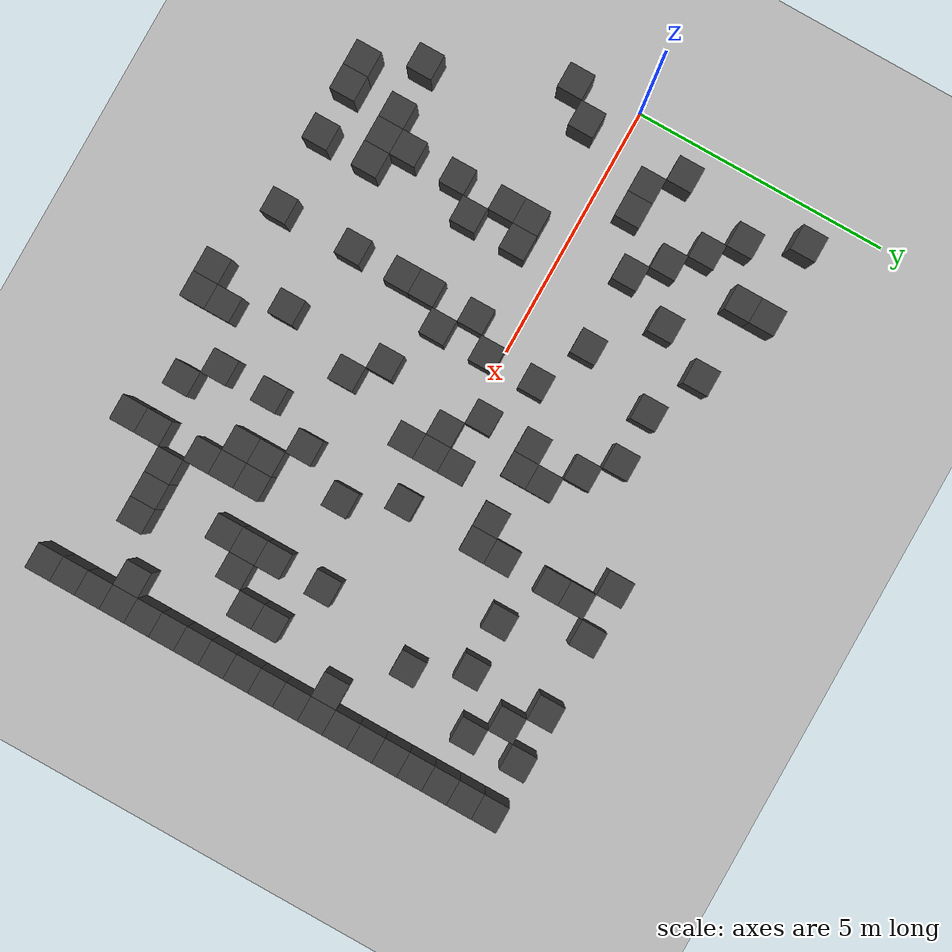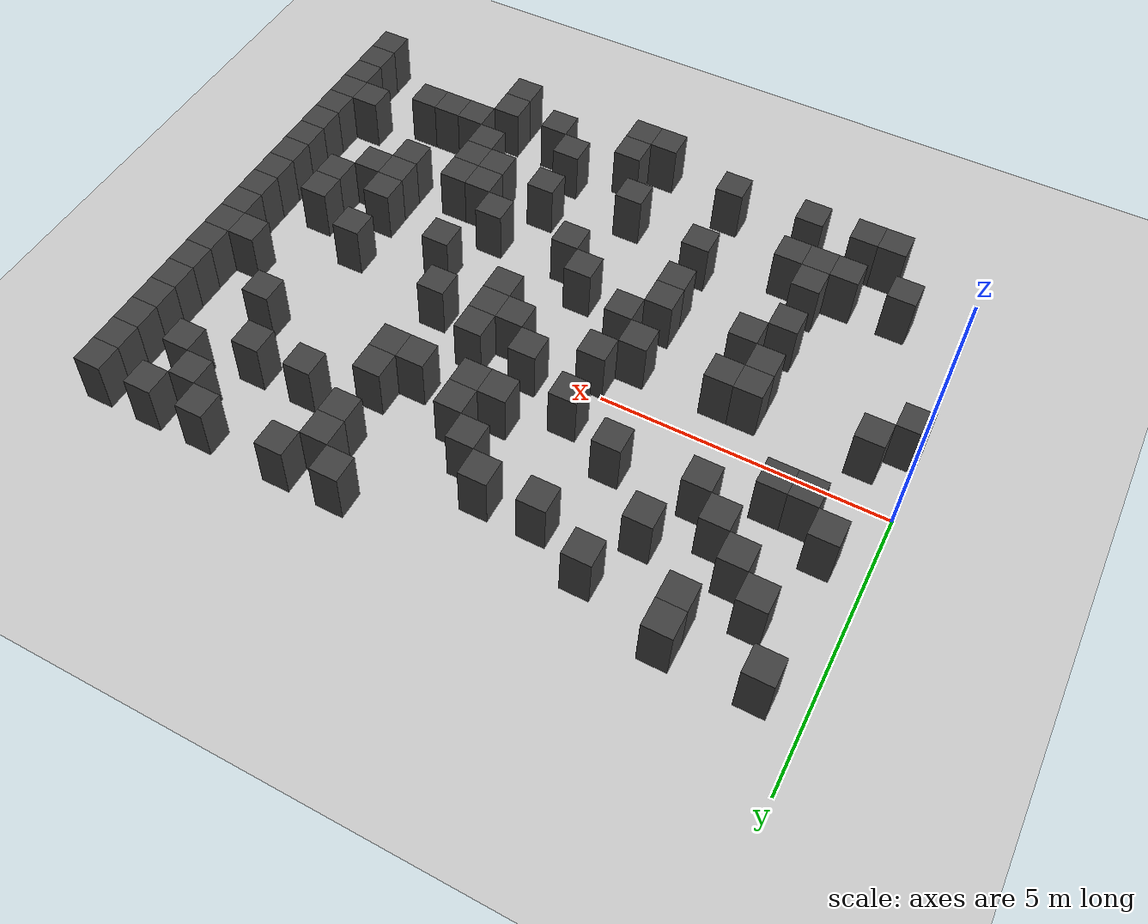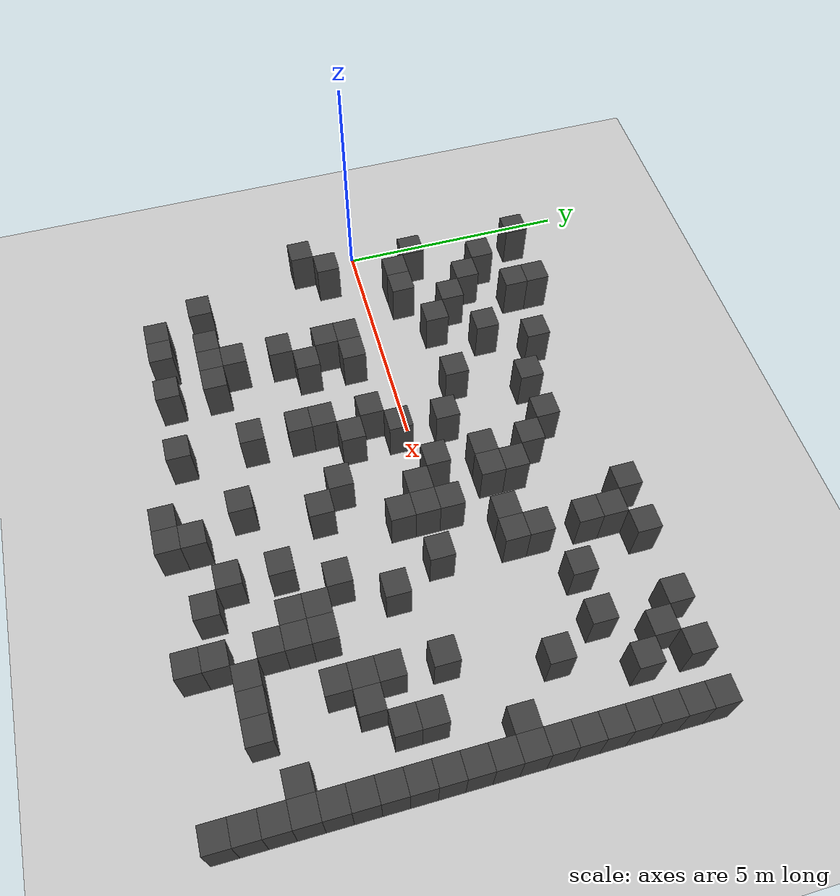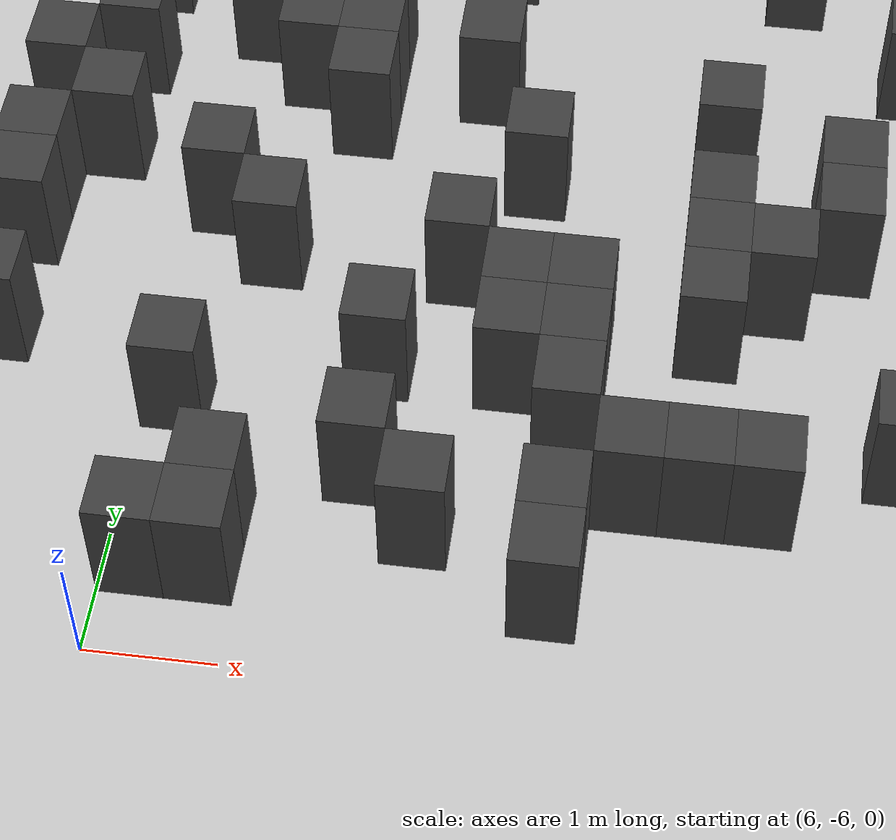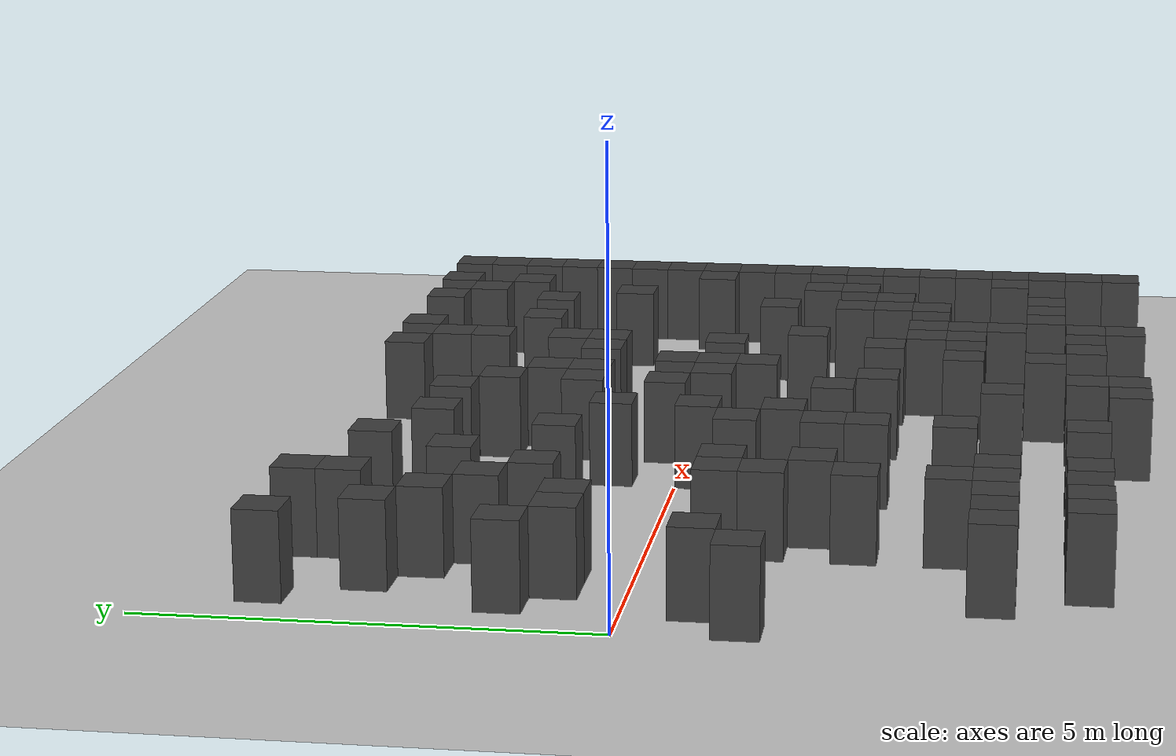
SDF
<sdf version="1.7">
 <world name="map_4225">
  <model name="ground_plane">
   <static>true</static>
   <link name="link">
    <collision name="collision">
     <geometry><plane><normal>0 0 1</normal><size>200 200</size></plane></geometry>
    </collision>
    <visual name="visual">
     <geometry><plane><normal>0 0 1</normal><size>200 200</size></plane></geometry>
     <material><ambient>0.8 0.8 0.8 1</ambient><diffuse>0.8 0.8 0.8 1</diffuse></material>
    </visual>
   </link>
  </model>
  <model name="maze_environment">
   <static>true</static>
   <link name="wall_244">
    <pose>0.750 3.750 0.500 0 0 0</pose>
    <collision name="col"><geometry><box><size>0.5 0.5 1.0</size></box></geometry></collision>
    <visual name="vis">
     <geometry><box><size>0.5 0.5 1.0</size></box></geometry>
     <material><ambient>0.15 0.15 0.15 1</ambient><diffuse>0.25 0.25 0.25 1</diffuse></material>
    </visual>
   </link>
   <link name="wall_245">
    <pose>2.250 3.750 0.500 0 0 0</pose>
    <collision name="col"><geometry><box><size>0.5 0.5 1.0</size></box></geometry></collision>
    <visual name="vis">
     <geometry><box><size>0.5 0.5 1.0</size></box></geometry>
     <material><ambient>0.15 0.15 0.15 1</ambient><diffuse>0.25 0.25 0.25 1</diffuse></material>
    </visual>
   </link>
   <link name="wall_246">
    <pose>7.750 3.750 0.500 0 0 0</pose>
    <collision name="col"><geometry><box><size>0.5 0.5 1.0</size></box></geometry></collision>
    <visual name="vis">
     <geometry><box><size>0.5 0.5 1.0</size></box></geometry>
     <material><ambient>0.15 0.15 0.15 1</ambient><diffuse>0.25 0.25 0.25 1</diffuse></material>
    </visual>
   </link>
   <link name="wall_247">
    <pose>8.750 3.750 0.500 0 0 0</pose>
    <collision name="col"><geometry><box><size>0.5 0.5 1.0</size></box></geometry></collision>
    <visual name="vis">
     <geometry><box><size>0.5 0.5 1.0</size></box></geometry>
     <material><ambient>0.15 0.15 0.15 1</ambient><diffuse>0.25 0.25 0.25 1</diffuse></material>
    </visual>
   </link>
   <link name="wall_248">
    <pose>10.250 3.750 0.500 0 0 0</pose>
    <collision name="col"><geometry><box><size>0.5 0.5 1.0</size></box></geometry></collision>
    <visual name="vis">
     <geometry><box><size>0.5 0.5 1.0</size></box></geometry>
     <material><ambient>0.15 0.15 0.15 1</ambient><diffuse>0.25 0.25 0.25 1</diffuse></material>
    </visual>
   </link>
   <link name="wall_249">
    <pose>11.250 3.750 0.500 0 0 0</pose>
    <collision name="col"><geometry><box><size>0.5 0.5 1.0</size></box></geometry></collision>
    <visual name="vis">
     <geometry><box><size>0.5 0.5 1.0</size></box></geometry>
     <material><ambient>0.15 0.15 0.15 1</ambient><diffuse>0.25 0.25 0.25 1</diffuse></material>
    </visual>
   </link>
   <link name="wall_250">
    <pose>12.250 3.750 0.500 0 0 0</pose>
    <collision name="col"><geometry><box><size>0.5 0.5 1.0</size></box></geometry></collision>
    <visual name="vis">
     <geometry><box><size>0.5 0.5 1.0</size></box></geometry>
     <material><ambient>0.15 0.15 0.15 1</ambient><diffuse>0.25 0.25 0.25 1</diffuse></material>
    </visual>
   </link>
   <link name="wall_256">
    <pose>2.250 3.250 0.500 0 0 0</pose>
    <collision name="col"><geometry><box><size>0.5 0.5 1.0</size></box></geometry></collision>
    <visual name="vis">
     <geometry><box><size>0.5 0.5 1.0</size></box></geometry>
     <material><ambient>0.15 0.15 0.15 1</ambient><diffuse>0.25 0.25 0.25 1</diffuse></material>
    </visual>
   </link>
   <link name="wall_257">
    <pose>3.750 3.250 0.500 0 0 0</pose>
    <collision name="col"><geometry><box><size>0.5 0.5 1.0</size></box></geometry></collision>
    <visual name="vis">
     <geometry><box><size>0.5 0.5 1.0</size></box></geometry>
     <material><ambient>0.15 0.15 0.15 1</ambient><diffuse>0.25 0.25 0.25 1</diffuse></material>
    </visual>
   </link>
   <link name="wall_258">
    <pose>8.250 3.250 0.500 0 0 0</pose>
    <collision name="col"><geometry><box><size>0.5 0.5 1.0</size></box></geometry></collision>
    <visual name="vis">
     <geometry><box><size>0.5 0.5 1.0</size></box></geometry>
     <material><ambient>0.15 0.15 0.15 1</ambient><diffuse>0.25 0.25 0.25 1</diffuse></material>
    </visual>
   </link>
   <link name="wall_259">
    <pose>10.750 3.250 0.500 0 0 0</pose>
    <collision name="col"><geometry><box><size>0.5 0.5 1.0</size></box></geometry></collision>
    <visual name="vis">
     <geometry><box><size>0.5 0.5 1.0</size></box></geometry>
     <material><ambient>0.15 0.15 0.15 1</ambient><diffuse>0.25 0.25 0.25 1</diffuse></material>
    </visual>
   </link>
   <link name="wall_260">
    <pose>12.250 3.250 0.500 0 0 0</pose>
    <collision name="col"><geometry><box><size>0.5 0.5 1.0</size></box></geometry></collision>
    <visual name="vis">
     <geometry><box><size>0.5 0.5 1.0</size></box></geometry>
     <material><ambient>0.15 0.15 0.15 1</ambient><diffuse>0.25 0.25 0.25 1</diffuse></material>
    </visual>
   </link>
   <link name="wall_267">
    <pose>1.250 2.750 0.500 0 0 0</pose>
    <collision name="col"><geometry><box><size>0.5 0.5 1.0</size></box></geometry></collision>
    <visual name="vis">
     <geometry><box><size>0.5 0.5 1.0</size></box></geometry>
     <material><ambient>0.15 0.15 0.15 1</ambient><diffuse>0.25 0.25 0.25 1</diffuse></material>
    </visual>
   </link>
   <link name="wall_268">
    <pose>4.750 2.750 0.500 0 0 0</pose>
    <collision name="col"><geometry><box><size>0.5 0.5 1.0</size></box></geometry></collision>
    <visual name="vis">
     <geometry><box><size>0.5 0.5 1.0</size></box></geometry>
     <material><ambient>0.15 0.15 0.15 1</ambient><diffuse>0.25 0.25 0.25 1</diffuse></material>
    </visual>
   </link>
   <link name="wall_269">
    <pose>5.750 2.750 0.500 0 0 0</pose>
    <collision name="col"><geometry><box><size>0.5 0.5 1.0</size></box></geometry></collision>
    <visual name="vis">
     <geometry><box><size>0.5 0.5 1.0</size></box></geometry>
     <material><ambient>0.15 0.15 0.15 1</ambient><diffuse>0.25 0.25 0.25 1</diffuse></material>
    </visual>
   </link>
   <link name="wall_270">
    <pose>8.250 2.750 0.500 0 0 0</pose>
    <collision name="col"><geometry><box><size>0.5 0.5 1.0</size></box></geometry></collision>
    <visual name="vis">
     <geometry><box><size>0.5 0.5 1.0</size></box></geometry>
     <material><ambient>0.15 0.15 0.15 1</ambient><diffuse>0.25 0.25 0.25 1</diffuse></material>
    </visual>
   </link>
   <link name="wall_271">
    <pose>11.250 2.750 0.500 0 0 0</pose>
    <collision name="col"><geometry><box><size>0.5 0.5 1.0</size></box></geometry></collision>
    <visual name="vis">
     <geometry><box><size>0.5 0.5 1.0</size></box></geometry>
     <material><ambient>0.15 0.15 0.15 1</ambient><diffuse>0.25 0.25 0.25 1</diffuse></material>
    </visual>
   </link>
   <link name="wall_272">
    <pose>12.250 2.750 0.500 0 0 0</pose>
    <collision name="col"><geometry><box><size>0.5 0.5 1.0</size></box></geometry></collision>
    <visual name="vis">
     <geometry><box><size>0.5 0.5 1.0</size></box></geometry>
     <material><ambient>0.15 0.15 0.15 1</ambient><diffuse>0.25 0.25 0.25 1</diffuse></material>
    </visual>
   </link>
   <link name="wall_280">
    <pose>1.750 2.250 0.500 0 0 0</pose>
    <collision name="col"><geometry><box><size>0.5 0.5 1.0</size></box></geometry></collision>
    <visual name="vis">
     <geometry><box><size>0.5 0.5 1.0</size></box></geometry>
     <material><ambient>0.15 0.15 0.15 1</ambient><diffuse>0.25 0.25 0.25 1</diffuse></material>
    </visual>
   </link>
   <link name="wall_281">
    <pose>3.250 2.250 0.500 0 0 0</pose>
    <collision name="col"><geometry><box><size>0.5 0.5 1.0</size></box></geometry></collision>
    <visual name="vis">
     <geometry><box><size>0.5 0.5 1.0</size></box></geometry>
     <material><ambient>0.15 0.15 0.15 1</ambient><diffuse>0.25 0.25 0.25 1</diffuse></material>
    </visual>
   </link>
   <link name="wall_282">
    <pose>6.250 2.250 0.500 0 0 0</pose>
    <collision name="col"><geometry><box><size>0.5 0.5 1.0</size></box></geometry></collision>
    <visual name="vis">
     <geometry><box><size>0.5 0.5 1.0</size></box></geometry>
     <material><ambient>0.15 0.15 0.15 1</ambient><diffuse>0.25 0.25 0.25 1</diffuse></material>
    </visual>
   </link>
   <link name="wall_283">
    <pose>9.250 2.250 0.500 0 0 0</pose>
    <collision name="col"><geometry><box><size>0.5 0.5 1.0</size></box></geometry></collision>
    <visual name="vis">
     <geometry><box><size>0.5 0.5 1.0</size></box></geometry>
     <material><ambient>0.15 0.15 0.15 1</ambient><diffuse>0.25 0.25 0.25 1</diffuse></material>
    </visual>
   </link>
   <link name="wall_284">
    <pose>10.250 2.250 0.500 0 0 0</pose>
    <collision name="col"><geometry><box><size>0.5 0.5 1.0</size></box></geometry></collision>
    <visual name="vis">
     <geometry><box><size>0.5 0.5 1.0</size></box></geometry>
     <material><ambient>0.15 0.15 0.15 1</ambient><diffuse>0.25 0.25 0.25 1</diffuse></material>
    </visual>
   </link>
   <link name="wall_285">
    <pose>12.250 2.250 0.500 0 0 0</pose>
    <collision name="col"><geometry><box><size>0.5 0.5 1.0</size></box></geometry></collision>
    <visual name="vis">
     <geometry><box><size>0.5 0.5 1.0</size></box></geometry>
     <material><ambient>0.15 0.15 0.15 1</ambient><diffuse>0.25 0.25 0.25 1</diffuse></material>
    </visual>
   </link>
   <link name="wall_297">
    <pose>2.250 1.750 0.500 0 0 0</pose>
    <collision name="col"><geometry><box><size>0.5 0.5 1.0</size></box></geometry></collision>
    <visual name="vis">
     <geometry><box><size>0.5 0.5 1.0</size></box></geometry>
     <material><ambient>0.15 0.15 0.15 1</ambient><diffuse>0.25 0.25 0.25 1</diffuse></material>
    </visual>
   </link>
   <link name="wall_298">
    <pose>6.750 1.750 0.500 0 0 0</pose>
    <collision name="col"><geometry><box><size>0.5 0.5 1.0</size></box></geometry></collision>
    <visual name="vis">
     <geometry><box><size>0.5 0.5 1.0</size></box></geometry>
     <material><ambient>0.15 0.15 0.15 1</ambient><diffuse>0.25 0.25 0.25 1</diffuse></material>
    </visual>
   </link>
   <link name="wall_299">
    <pose>8.250 1.750 0.500 0 0 0</pose>
    <collision name="col"><geometry><box><size>0.5 0.5 1.0</size></box></geometry></collision>
    <visual name="vis">
     <geometry><box><size>0.5 0.5 1.0</size></box></geometry>
     <material><ambient>0.15 0.15 0.15 1</ambient><diffuse>0.25 0.25 0.25 1</diffuse></material>
    </visual>
   </link>
   <link name="wall_300">
    <pose>12.250 1.750 0.500 0 0 0</pose>
    <collision name="col"><geometry><box><size>0.5 0.5 1.0</size></box></geometry></collision>
    <visual name="vis">
     <geometry><box><size>0.5 0.5 1.0</size></box></geometry>
     <material><ambient>0.15 0.15 0.15 1</ambient><diffuse>0.25 0.25 0.25 1</diffuse></material>
    </visual>
   </link>
   <link name="wall_305">
    <pose>0.750 1.250 0.500 0 0 0</pose>
    <collision name="col"><geometry><box><size>0.5 0.5 1.0</size></box></geometry></collision>
    <visual name="vis">
     <geometry><box><size>0.5 0.5 1.0</size></box></geometry>
     <material><ambient>0.15 0.15 0.15 1</ambient><diffuse>0.25 0.25 0.25 1</diffuse></material>
    </visual>
   </link>
   <link name="wall_306">
    <pose>2.750 1.250 0.500 0 0 0</pose>
    <collision name="col"><geometry><box><size>0.5 0.5 1.0</size></box></geometry></collision>
    <visual name="vis">
     <geometry><box><size>0.5 0.5 1.0</size></box></geometry>
     <material><ambient>0.15 0.15 0.15 1</ambient><diffuse>0.25 0.25 0.25 1</diffuse></material>
    </visual>
   </link>
   <link name="wall_307">
    <pose>4.250 1.250 0.500 0 0 0</pose>
    <collision name="col"><geometry><box><size>0.5 0.5 1.0</size></box></geometry></collision>
    <visual name="vis">
     <geometry><box><size>0.5 0.5 1.0</size></box></geometry>
     <material><ambient>0.15 0.15 0.15 1</ambient><diffuse>0.25 0.25 0.25 1</diffuse></material>
    </visual>
   </link>
   <link name="wall_308">
    <pose>6.250 1.250 0.500 0 0 0</pose>
    <collision name="col"><geometry><box><size>0.5 0.5 1.0</size></box></geometry></collision>
    <visual name="vis">
     <geometry><box><size>0.5 0.5 1.0</size></box></geometry>
     <material><ambient>0.15 0.15 0.15 1</ambient><diffuse>0.25 0.25 0.25 1</diffuse></material>
    </visual>
   </link>
   <link name="wall_309">
    <pose>6.750 1.250 0.500 0 0 0</pose>
    <collision name="col"><geometry><box><size>0.5 0.5 1.0</size></box></geometry></collision>
    <visual name="vis">
     <geometry><box><size>0.5 0.5 1.0</size></box></geometry>
     <material><ambient>0.15 0.15 0.15 1</ambient><diffuse>0.25 0.25 0.25 1</diffuse></material>
    </visual>
   </link>
   <link name="wall_310">
    <pose>7.750 1.250 0.500 0 0 0</pose>
    <collision name="col"><geometry><box><size>0.5 0.5 1.0</size></box></geometry></collision>
    <visual name="vis">
     <geometry><box><size>0.5 0.5 1.0</size></box></geometry>
     <material><ambient>0.15 0.15 0.15 1</ambient><diffuse>0.25 0.25 0.25 1</diffuse></material>
    </visual>
   </link>
   <link name="wall_311">
    <pose>8.250 1.250 0.500 0 0 0</pose>
    <collision name="col"><geometry><box><size>0.5 0.5 1.0</size></box></geometry></collision>
    <visual name="vis">
     <geometry><box><size>0.5 0.5 1.0</size></box></geometry>
     <material><ambient>0.15 0.15 0.15 1</ambient><diffuse>0.25 0.25 0.25 1</diffuse></material>
    </visual>
   </link>
   <link name="wall_312">
    <pose>10.750 1.250 0.500 0 0 0</pose>
    <collision name="col"><geometry><box><size>0.5 0.5 1.0</size></box></geometry></collision>
    <visual name="vis">
     <geometry><box><size>0.5 0.5 1.0</size></box></geometry>
     <material><ambient>0.15 0.15 0.15 1</ambient><diffuse>0.25 0.25 0.25 1</diffuse></material>
    </visual>
   </link>
   <link name="wall_313">
    <pose>12.250 1.250 0.500 0 0 0</pose>
    <collision name="col"><geometry><box><size>0.5 0.5 1.0</size></box></geometry></collision>
    <visual name="vis">
     <geometry><box><size>0.5 0.5 1.0</size></box></geometry>
     <material><ambient>0.15 0.15 0.15 1</ambient><diffuse>0.25 0.25 0.25 1</diffuse></material>
    </visual>
   </link>
   <link name="wall_320">
    <pose>1.250 0.750 0.500 0 0 0</pose>
    <collision name="col"><geometry><box><size>0.5 0.5 1.0</size></box></geometry></collision>
    <visual name="vis">
     <geometry><box><size>0.5 0.5 1.0</size></box></geometry>
     <material><ambient>0.15 0.15 0.15 1</ambient><diffuse>0.25 0.25 0.25 1</diffuse></material>
    </visual>
   </link>
   <link name="wall_321">
    <pose>1.750 0.750 0.500 0 0 0</pose>
    <collision name="col"><geometry><box><size>0.5 0.5 1.0</size></box></geometry></collision>
    <visual name="vis">
     <geometry><box><size>0.5 0.5 1.0</size></box></geometry>
     <material><ambient>0.15 0.15 0.15 1</ambient><diffuse>0.25 0.25 0.25 1</diffuse></material>
    </visual>
   </link>
   <link name="wall_322">
    <pose>5.250 0.750 0.500 0 0 0</pose>
    <collision name="col"><geometry><box><size>0.5 0.5 1.0</size></box></geometry></collision>
    <visual name="vis">
     <geometry><box><size>0.5 0.5 1.0</size></box></geometry>
     <material><ambient>0.15 0.15 0.15 1</ambient><diffuse>0.25 0.25 0.25 1</diffuse></material>
    </visual>
   </link>
   <link name="wall_323">
    <pose>12.250 0.750 0.500 0 0 0</pose>
    <collision name="col"><geometry><box><size>0.5 0.5 1.0</size></box></geometry></collision>
    <visual name="vis">
     <geometry><box><size>0.5 0.5 1.0</size></box></geometry>
     <material><ambient>0.15 0.15 0.15 1</ambient><diffuse>0.25 0.25 0.25 1</diffuse></material>
    </visual>
   </link>
   <link name="wall_329">
    <pose>6.250 0.250 0.500 0 0 0</pose>
    <collision name="col"><geometry><box><size>0.5 0.5 1.0</size></box></geometry></collision>
    <visual name="vis">
     <geometry><box><size>0.5 0.5 1.0</size></box></geometry>
     <material><ambient>0.15 0.15 0.15 1</ambient><diffuse>0.25 0.25 0.25 1</diffuse></material>
    </visual>
   </link>
   <link name="wall_330">
    <pose>7.250 0.250 0.500 0 0 0</pose>
    <collision name="col"><geometry><box><size>0.5 0.5 1.0</size></box></geometry></collision>
    <visual name="vis">
     <geometry><box><size>0.5 0.5 1.0</size></box></geometry>
     <material><ambient>0.15 0.15 0.15 1</ambient><diffuse>0.25 0.25 0.25 1</diffuse></material>
    </visual>
   </link>
   <link name="wall_331">
    <pose>11.750 0.250 0.500 0 0 0</pose>
    <collision name="col"><geometry><box><size>0.5 0.5 1.0</size></box></geometry></collision>
    <visual name="vis">
     <geometry><box><size>0.5 0.5 1.0</size></box></geometry>
     <material><ambient>0.15 0.15 0.15 1</ambient><diffuse>0.25 0.25 0.25 1</diffuse></material>
    </visual>
   </link>
   <link name="wall_332">
    <pose>12.250 0.250 0.500 0 0 0</pose>
    <collision name="col"><geometry><box><size>0.5 0.5 1.0</size></box></geometry></collision>
    <visual name="vis">
     <geometry><box><size>0.5 0.5 1.0</size></box></geometry>
     <material><ambient>0.15 0.15 0.15 1</ambient><diffuse>0.25 0.25 0.25 1</diffuse></material>
    </visual>
   </link>
   <link name="wall_342">
    <pose>5.250 -0.250 0.500 0 0 0</pose>
    <collision name="col"><geometry><box><size>0.5 0.5 1.0</size></box></geometry></collision>
    <visual name="vis">
     <geometry><box><size>0.5 0.5 1.0</size></box></geometry>
     <material><ambient>0.15 0.15 0.15 1</ambient><diffuse>0.25 0.25 0.25 1</diffuse></material>
    </visual>
   </link>
   <link name="wall_343">
    <pose>6.750 -0.250 0.500 0 0 0</pose>
    <collision name="col"><geometry><box><size>0.5 0.5 1.0</size></box></geometry></collision>
    <visual name="vis">
     <geometry><box><size>0.5 0.5 1.0</size></box></geometry>
     <material><ambient>0.15 0.15 0.15 1</ambient><diffuse>0.25 0.25 0.25 1</diffuse></material>
    </visual>
   </link>
   <link name="wall_344">
    <pose>7.250 -0.250 0.500 0 0 0</pose>
    <collision name="col"><geometry><box><size>0.5 0.5 1.0</size></box></geometry></collision>
    <visual name="vis">
     <geometry><box><size>0.5 0.5 1.0</size></box></geometry>
     <material><ambient>0.15 0.15 0.15 1</ambient><diffuse>0.25 0.25 0.25 1</diffuse></material>
    </visual>
   </link>
   <link name="wall_345">
    <pose>8.250 -0.250 0.500 0 0 0</pose>
    <collision name="col"><geometry><box><size>0.5 0.5 1.0</size></box></geometry></collision>
    <visual name="vis">
     <geometry><box><size>0.5 0.5 1.0</size></box></geometry>
     <material><ambient>0.15 0.15 0.15 1</ambient><diffuse>0.25 0.25 0.25 1</diffuse></material>
    </visual>
   </link>
   <link name="wall_346">
    <pose>12.250 -0.250 0.500 0 0 0</pose>
    <collision name="col"><geometry><box><size>0.5 0.5 1.0</size></box></geometry></collision>
    <visual name="vis">
     <geometry><box><size>0.5 0.5 1.0</size></box></geometry>
     <material><ambient>0.15 0.15 0.15 1</ambient><diffuse>0.25 0.25 0.25 1</diffuse></material>
    </visual>
   </link>
   <link name="wall_353">
    <pose>0.750 -0.750 0.500 0 0 0</pose>
    <collision name="col"><geometry><box><size>0.5 0.5 1.0</size></box></geometry></collision>
    <visual name="vis">
     <geometry><box><size>0.5 0.5 1.0</size></box></geometry>
     <material><ambient>0.15 0.15 0.15 1</ambient><diffuse>0.25 0.25 0.25 1</diffuse></material>
    </visual>
   </link>
   <link name="wall_354">
    <pose>2.750 -0.750 0.500 0 0 0</pose>
    <collision name="col"><geometry><box><size>0.5 0.5 1.0</size></box></geometry></collision>
    <visual name="vis">
     <geometry><box><size>0.5 0.5 1.0</size></box></geometry>
     <material><ambient>0.15 0.15 0.15 1</ambient><diffuse>0.25 0.25 0.25 1</diffuse></material>
    </visual>
   </link>
   <link name="wall_355">
    <pose>3.250 -0.750 0.500 0 0 0</pose>
    <collision name="col"><geometry><box><size>0.5 0.5 1.0</size></box></geometry></collision>
    <visual name="vis">
     <geometry><box><size>0.5 0.5 1.0</size></box></geometry>
     <material><ambient>0.15 0.15 0.15 1</ambient><diffuse>0.25 0.25 0.25 1</diffuse></material>
    </visual>
   </link>
   <link name="wall_356">
    <pose>4.750 -0.750 0.500 0 0 0</pose>
    <collision name="col"><geometry><box><size>0.5 0.5 1.0</size></box></geometry></collision>
    <visual name="vis">
     <geometry><box><size>0.5 0.5 1.0</size></box></geometry>
     <material><ambient>0.15 0.15 0.15 1</ambient><diffuse>0.25 0.25 0.25 1</diffuse></material>
    </visual>
   </link>
   <link name="wall_357">
    <pose>7.250 -0.750 0.500 0 0 0</pose>
    <collision name="col"><geometry><box><size>0.5 0.5 1.0</size></box></geometry></collision>
    <visual name="vis">
     <geometry><box><size>0.5 0.5 1.0</size></box></geometry>
     <material><ambient>0.15 0.15 0.15 1</ambient><diffuse>0.25 0.25 0.25 1</diffuse></material>
    </visual>
   </link>
   <link name="wall_358">
    <pose>10.250 -0.750 0.500 0 0 0</pose>
    <collision name="col"><geometry><box><size>0.5 0.5 1.0</size></box></geometry></collision>
    <visual name="vis">
     <geometry><box><size>0.5 0.5 1.0</size></box></geometry>
     <material><ambient>0.15 0.15 0.15 1</ambient><diffuse>0.25 0.25 0.25 1</diffuse></material>
    </visual>
   </link>
   <link name="wall_359">
    <pose>12.250 -0.750 0.500 0 0 0</pose>
    <collision name="col"><geometry><box><size>0.5 0.5 1.0</size></box></geometry></collision>
    <visual name="vis">
     <geometry><box><size>0.5 0.5 1.0</size></box></geometry>
     <material><ambient>0.15 0.15 0.15 1</ambient><diffuse>0.25 0.25 0.25 1</diffuse></material>
    </visual>
   </link>
   <link name="wall_365">
    <pose>0.250 -1.250 0.500 0 0 0</pose>
    <collision name="col"><geometry><box><size>0.5 0.5 1.0</size></box></geometry></collision>
    <visual name="vis">
     <geometry><box><size>0.5 0.5 1.0</size></box></geometry>
     <material><ambient>0.15 0.15 0.15 1</ambient><diffuse>0.25 0.25 0.25 1</diffuse></material>
    </visual>
   </link>
   <link name="wall_366">
    <pose>2.750 -1.250 0.500 0 0 0</pose>
    <collision name="col"><geometry><box><size>0.5 0.5 1.0</size></box></geometry></collision>
    <visual name="vis">
     <geometry><box><size>0.5 0.5 1.0</size></box></geometry>
     <material><ambient>0.15 0.15 0.15 1</ambient><diffuse>0.25 0.25 0.25 1</diffuse></material>
    </visual>
   </link>
   <link name="wall_367">
    <pose>5.250 -1.250 0.500 0 0 0</pose>
    <collision name="col"><geometry><box><size>0.5 0.5 1.0</size></box></geometry></collision>
    <visual name="vis">
     <geometry><box><size>0.5 0.5 1.0</size></box></geometry>
     <material><ambient>0.15 0.15 0.15 1</ambient><diffuse>0.25 0.25 0.25 1</diffuse></material>
    </visual>
   </link>
   <link name="wall_368">
    <pose>8.750 -1.250 0.500 0 0 0</pose>
    <collision name="col"><geometry><box><size>0.5 0.5 1.0</size></box></geometry></collision>
    <visual name="vis">
     <geometry><box><size>0.5 0.5 1.0</size></box></geometry>
     <material><ambient>0.15 0.15 0.15 1</ambient><diffuse>0.25 0.25 0.25 1</diffuse></material>
    </visual>
   </link>
   <link name="wall_369">
    <pose>11.250 -1.250 0.500 0 0 0</pose>
    <collision name="col"><geometry><box><size>0.5 0.5 1.0</size></box></geometry></collision>
    <visual name="vis">
     <geometry><box><size>0.5 0.5 1.0</size></box></geometry>
     <material><ambient>0.15 0.15 0.15 1</ambient><diffuse>0.25 0.25 0.25 1</diffuse></material>
    </visual>
   </link>
   <link name="wall_370">
    <pose>12.250 -1.250 0.500 0 0 0</pose>
    <collision name="col"><geometry><box><size>0.5 0.5 1.0</size></box></geometry></collision>
    <visual name="vis">
     <geometry><box><size>0.5 0.5 1.0</size></box></geometry>
     <material><ambient>0.15 0.15 0.15 1</ambient><diffuse>0.25 0.25 0.25 1</diffuse></material>
    </visual>
   </link>
   <link name="wall_373">
    <pose>3.250 -1.750 0.500 0 0 0</pose>
    <collision name="col"><geometry><box><size>0.5 0.5 1.0</size></box></geometry></collision>
    <visual name="vis">
     <geometry><box><size>0.5 0.5 1.0</size></box></geometry>
     <material><ambient>0.15 0.15 0.15 1</ambient><diffuse>0.25 0.25 0.25 1</diffuse></material>
    </visual>
   </link>
   <link name="wall_374">
    <pose>4.750 -1.750 0.500 0 0 0</pose>
    <collision name="col"><geometry><box><size>0.5 0.5 1.0</size></box></geometry></collision>
    <visual name="vis">
     <geometry><box><size>0.5 0.5 1.0</size></box></geometry>
     <material><ambient>0.15 0.15 0.15 1</ambient><diffuse>0.25 0.25 0.25 1</diffuse></material>
    </visual>
   </link>
   <link name="wall_375">
    <pose>6.250 -1.750 0.500 0 0 0</pose>
    <collision name="col"><geometry><box><size>0.5 0.5 1.0</size></box></geometry></collision>
    <visual name="vis">
     <geometry><box><size>0.5 0.5 1.0</size></box></geometry>
     <material><ambient>0.15 0.15 0.15 1</ambient><diffuse>0.25 0.25 0.25 1</diffuse></material>
    </visual>
   </link>
   <link name="wall_376">
    <pose>10.250 -1.750 0.500 0 0 0</pose>
    <collision name="col"><geometry><box><size>0.5 0.5 1.0</size></box></geometry></collision>
    <visual name="vis">
     <geometry><box><size>0.5 0.5 1.0</size></box></geometry>
     <material><ambient>0.15 0.15 0.15 1</ambient><diffuse>0.25 0.25 0.25 1</diffuse></material>
    </visual>
   </link>
   <link name="wall_377">
    <pose>11.250 -1.750 0.500 0 0 0</pose>
    <collision name="col"><geometry><box><size>0.5 0.5 1.0</size></box></geometry></collision>
    <visual name="vis">
     <geometry><box><size>0.5 0.5 1.0</size></box></geometry>
     <material><ambient>0.15 0.15 0.15 1</ambient><diffuse>0.25 0.25 0.25 1</diffuse></material>
    </visual>
   </link>
   <link name="wall_378">
    <pose>12.250 -1.750 0.500 0 0 0</pose>
    <collision name="col"><geometry><box><size>0.5 0.5 1.0</size></box></geometry></collision>
    <visual name="vis">
     <geometry><box><size>0.5 0.5 1.0</size></box></geometry>
     <material><ambient>0.15 0.15 0.15 1</ambient><diffuse>0.25 0.25 0.25 1</diffuse></material>
    </visual>
   </link>
   <link name="wall_383">
    <pose>2.750 -2.250 0.500 0 0 0</pose>
    <collision name="col"><geometry><box><size>0.5 0.5 1.0</size></box></geometry></collision>
    <visual name="vis">
     <geometry><box><size>0.5 0.5 1.0</size></box></geometry>
     <material><ambient>0.15 0.15 0.15 1</ambient><diffuse>0.25 0.25 0.25 1</diffuse></material>
    </visual>
   </link>
   <link name="wall_384">
    <pose>4.750 -2.250 0.500 0 0 0</pose>
    <collision name="col"><geometry><box><size>0.5 0.5 1.0</size></box></geometry></collision>
    <visual name="vis">
     <geometry><box><size>0.5 0.5 1.0</size></box></geometry>
     <material><ambient>0.15 0.15 0.15 1</ambient><diffuse>0.25 0.25 0.25 1</diffuse></material>
    </visual>
   </link>
   <link name="wall_385">
    <pose>6.750 -2.250 0.500 0 0 0</pose>
    <collision name="col"><geometry><box><size>0.5 0.5 1.0</size></box></geometry></collision>
    <visual name="vis">
     <geometry><box><size>0.5 0.5 1.0</size></box></geometry>
     <material><ambient>0.15 0.15 0.15 1</ambient><diffuse>0.25 0.25 0.25 1</diffuse></material>
    </visual>
   </link>
   <link name="wall_386">
    <pose>8.250 -2.250 0.500 0 0 0</pose>
    <collision name="col"><geometry><box><size>0.5 0.5 1.0</size></box></geometry></collision>
    <visual name="vis">
     <geometry><box><size>0.5 0.5 1.0</size></box></geometry>
     <material><ambient>0.15 0.15 0.15 1</ambient><diffuse>0.25 0.25 0.25 1</diffuse></material>
    </visual>
   </link>
   <link name="wall_387">
    <pose>10.250 -2.250 0.500 0 0 0</pose>
    <collision name="col"><geometry><box><size>0.5 0.5 1.0</size></box></geometry></collision>
    <visual name="vis">
     <geometry><box><size>0.5 0.5 1.0</size></box></geometry>
     <material><ambient>0.15 0.15 0.15 1</ambient><diffuse>0.25 0.25 0.25 1</diffuse></material>
    </visual>
   </link>
   <link name="wall_388">
    <pose>10.750 -2.250 0.500 0 0 0</pose>
    <collision name="col"><geometry><box><size>0.5 0.5 1.0</size></box></geometry></collision>
    <visual name="vis">
     <geometry><box><size>0.5 0.5 1.0</size></box></geometry>
     <material><ambient>0.15 0.15 0.15 1</ambient><diffuse>0.25 0.25 0.25 1</diffuse></material>
    </visual>
   </link>
   <link name="wall_389">
    <pose>12.250 -2.250 0.500 0 0 0</pose>
    <collision name="col"><geometry><box><size>0.5 0.5 1.0</size></box></geometry></collision>
    <visual name="vis">
     <geometry><box><size>0.5 0.5 1.0</size></box></geometry>
     <material><ambient>0.15 0.15 0.15 1</ambient><diffuse>0.25 0.25 0.25 1</diffuse></material>
    </visual>
   </link>
   <link name="wall_393">
    <pose>8.750 -2.750 0.500 0 0 0</pose>
    <collision name="col"><geometry><box><size>0.5 0.5 1.0</size></box></geometry></collision>
    <visual name="vis">
     <geometry><box><size>0.5 0.5 1.0</size></box></geometry>
     <material><ambient>0.15 0.15 0.15 1</ambient><diffuse>0.25 0.25 0.25 1</diffuse></material>
    </visual>
   </link>
   <link name="wall_394">
    <pose>9.250 -2.750 0.500 0 0 0</pose>
    <collision name="col"><geometry><box><size>0.5 0.5 1.0</size></box></geometry></collision>
    <visual name="vis">
     <geometry><box><size>0.5 0.5 1.0</size></box></geometry>
     <material><ambient>0.15 0.15 0.15 1</ambient><diffuse>0.25 0.25 0.25 1</diffuse></material>
    </visual>
   </link>
   <link name="wall_395">
    <pose>10.250 -2.750 0.500 0 0 0</pose>
    <collision name="col"><geometry><box><size>0.5 0.5 1.0</size></box></geometry></collision>
    <visual name="vis">
     <geometry><box><size>0.5 0.5 1.0</size></box></geometry>
     <material><ambient>0.15 0.15 0.15 1</ambient><diffuse>0.25 0.25 0.25 1</diffuse></material>
    </visual>
   </link>
   <link name="wall_396">
    <pose>12.250 -2.750 0.500 0 0 0</pose>
    <collision name="col"><geometry><box><size>0.5 0.5 1.0</size></box></geometry></collision>
    <visual name="vis">
     <geometry><box><size>0.5 0.5 1.0</size></box></geometry>
     <material><ambient>0.15 0.15 0.15 1</ambient><diffuse>0.25 0.25 0.25 1</diffuse></material>
    </visual>
   </link>
   <link name="wall_402">
    <pose>2.750 -3.250 0.500 0 0 0</pose>
    <collision name="col"><geometry><box><size>0.5 0.5 1.0</size></box></geometry></collision>
    <visual name="vis">
     <geometry><box><size>0.5 0.5 1.0</size></box></geometry>
     <material><ambient>0.15 0.15 0.15 1</ambient><diffuse>0.25 0.25 0.25 1</diffuse></material>
    </visual>
   </link>
   <link name="wall_403">
    <pose>4.750 -3.250 0.500 0 0 0</pose>
    <collision name="col"><geometry><box><size>0.5 0.5 1.0</size></box></geometry></collision>
    <visual name="vis">
     <geometry><box><size>0.5 0.5 1.0</size></box></geometry>
     <material><ambient>0.15 0.15 0.15 1</ambient><diffuse>0.25 0.25 0.25 1</diffuse></material>
    </visual>
   </link>
   <link name="wall_404">
    <pose>7.750 -3.250 0.500 0 0 0</pose>
    <collision name="col"><geometry><box><size>0.5 0.5 1.0</size></box></geometry></collision>
    <visual name="vis">
     <geometry><box><size>0.5 0.5 1.0</size></box></geometry>
     <material><ambient>0.15 0.15 0.15 1</ambient><diffuse>0.25 0.25 0.25 1</diffuse></material>
    </visual>
   </link>
   <link name="wall_405">
    <pose>8.750 -3.250 0.500 0 0 0</pose>
    <collision name="col"><geometry><box><size>0.5 0.5 1.0</size></box></geometry></collision>
    <visual name="vis">
     <geometry><box><size>0.5 0.5 1.0</size></box></geometry>
     <material><ambient>0.15 0.15 0.15 1</ambient><diffuse>0.25 0.25 0.25 1</diffuse></material>
    </visual>
   </link>
   <link name="wall_406">
    <pose>9.250 -3.250 0.500 0 0 0</pose>
    <collision name="col"><geometry><box><size>0.5 0.5 1.0</size></box></geometry></collision>
    <visual name="vis">
     <geometry><box><size>0.5 0.5 1.0</size></box></geometry>
     <material><ambient>0.15 0.15 0.15 1</ambient><diffuse>0.25 0.25 0.25 1</diffuse></material>
    </visual>
   </link>
   <link name="wall_407">
    <pose>12.250 -3.250 0.500 0 0 0</pose>
    <collision name="col"><geometry><box><size>0.5 0.5 1.0</size></box></geometry></collision>
    <visual name="vis">
     <geometry><box><size>0.5 0.5 1.0</size></box></geometry>
     <material><ambient>0.15 0.15 0.15 1</ambient><diffuse>0.25 0.25 0.25 1</diffuse></material>
    </visual>
   </link>
   <link name="wall_415">
    <pose>1.250 -3.750 0.500 0 0 0</pose>
    <collision name="col"><geometry><box><size>0.5 0.5 1.0</size></box></geometry></collision>
    <visual name="vis">
     <geometry><box><size>0.5 0.5 1.0</size></box></geometry>
     <material><ambient>0.15 0.15 0.15 1</ambient><diffuse>0.25 0.25 0.25 1</diffuse></material>
    </visual>
   </link>
   <link name="wall_416">
    <pose>2.250 -3.750 0.500 0 0 0</pose>
    <collision name="col"><geometry><box><size>0.5 0.5 1.0</size></box></geometry></collision>
    <visual name="vis">
     <geometry><box><size>0.5 0.5 1.0</size></box></geometry>
     <material><ambient>0.15 0.15 0.15 1</ambient><diffuse>0.25 0.25 0.25 1</diffuse></material>
    </visual>
   </link>
   <link name="wall_417">
    <pose>2.750 -3.750 0.500 0 0 0</pose>
    <collision name="col"><geometry><box><size>0.5 0.5 1.0</size></box></geometry></collision>
    <visual name="vis">
     <geometry><box><size>0.5 0.5 1.0</size></box></geometry>
     <material><ambient>0.15 0.15 0.15 1</ambient><diffuse>0.25 0.25 0.25 1</diffuse></material>
    </visual>
   </link>
   <link name="wall_418">
    <pose>3.250 -3.750 0.500 0 0 0</pose>
    <collision name="col"><geometry><box><size>0.5 0.5 1.0</size></box></geometry></collision>
    <visual name="vis">
     <geometry><box><size>0.5 0.5 1.0</size></box></geometry>
     <material><ambient>0.15 0.15 0.15 1</ambient><diffuse>0.25 0.25 0.25 1</diffuse></material>
    </visual>
   </link>
   <link name="wall_419">
    <pose>6.250 -3.750 0.500 0 0 0</pose>
    <collision name="col"><geometry><box><size>0.5 0.5 1.0</size></box></geometry></collision>
    <visual name="vis">
     <geometry><box><size>0.5 0.5 1.0</size></box></geometry>
     <material><ambient>0.15 0.15 0.15 1</ambient><diffuse>0.25 0.25 0.25 1</diffuse></material>
    </visual>
   </link>
   <link name="wall_420">
    <pose>9.250 -3.750 0.500 0 0 0</pose>
    <collision name="col"><geometry><box><size>0.5 0.5 1.0</size></box></geometry></collision>
    <visual name="vis">
     <geometry><box><size>0.5 0.5 1.0</size></box></geometry>
     <material><ambient>0.15 0.15 0.15 1</ambient><diffuse>0.25 0.25 0.25 1</diffuse></material>
    </visual>
   </link>
   <link name="wall_421">
    <pose>11.750 -3.750 0.500 0 0 0</pose>
    <collision name="col"><geometry><box><size>0.5 0.5 1.0</size></box></geometry></collision>
    <visual name="vis">
     <geometry><box><size>0.5 0.5 1.0</size></box></geometry>
     <material><ambient>0.15 0.15 0.15 1</ambient><diffuse>0.25 0.25 0.25 1</diffuse></material>
    </visual>
   </link>
   <link name="wall_422">
    <pose>12.250 -3.750 0.500 0 0 0</pose>
    <collision name="col"><geometry><box><size>0.5 0.5 1.0</size></box></geometry></collision>
    <visual name="vis">
     <geometry><box><size>0.5 0.5 1.0</size></box></geometry>
     <material><ambient>0.15 0.15 0.15 1</ambient><diffuse>0.25 0.25 0.25 1</diffuse></material>
    </visual>
   </link>
   <link name="wall_429">
    <pose>7.750 -4.250 0.500 0 0 0</pose>
    <collision name="col"><geometry><box><size>0.5 0.5 1.0</size></box></geometry></collision>
    <visual name="vis">
     <geometry><box><size>0.5 0.5 1.0</size></box></geometry>
     <material><ambient>0.15 0.15 0.15 1</ambient><diffuse>0.25 0.25 0.25 1</diffuse></material>
    </visual>
   </link>
   <link name="wall_430">
    <pose>9.750 -4.250 0.500 0 0 0</pose>
    <collision name="col"><geometry><box><size>0.5 0.5 1.0</size></box></geometry></collision>
    <visual name="vis">
     <geometry><box><size>0.5 0.5 1.0</size></box></geometry>
     <material><ambient>0.15 0.15 0.15 1</ambient><diffuse>0.25 0.25 0.25 1</diffuse></material>
    </visual>
   </link>
   <link name="wall_431">
    <pose>10.250 -4.250 0.500 0 0 0</pose>
    <collision name="col"><geometry><box><size>0.5 0.5 1.0</size></box></geometry></collision>
    <visual name="vis">
     <geometry><box><size>0.5 0.5 1.0</size></box></geometry>
     <material><ambient>0.15 0.15 0.15 1</ambient><diffuse>0.25 0.25 0.25 1</diffuse></material>
    </visual>
   </link>
   <link name="wall_432">
    <pose>10.750 -4.250 0.500 0 0 0</pose>
    <collision name="col"><geometry><box><size>0.5 0.5 1.0</size></box></geometry></collision>
    <visual name="vis">
     <geometry><box><size>0.5 0.5 1.0</size></box></geometry>
     <material><ambient>0.15 0.15 0.15 1</ambient><diffuse>0.25 0.25 0.25 1</diffuse></material>
    </visual>
   </link>
   <link name="wall_433">
    <pose>12.250 -4.250 0.500 0 0 0</pose>
    <collision name="col"><geometry><box><size>0.5 0.5 1.0</size></box></geometry></collision>
    <visual name="vis">
     <geometry><box><size>0.5 0.5 1.0</size></box></geometry>
     <material><ambient>0.15 0.15 0.15 1</ambient><diffuse>0.25 0.25 0.25 1</diffuse></material>
    </visual>
   </link>
   <link name="wall_441">
    <pose>1.750 -4.750 0.500 0 0 0</pose>
    <collision name="col"><geometry><box><size>0.5 0.5 1.0</size></box></geometry></collision>
    <visual name="vis">
     <geometry><box><size>0.5 0.5 1.0</size></box></geometry>
     <material><ambient>0.15 0.15 0.15 1</ambient><diffuse>0.25 0.25 0.25 1</diffuse></material>
    </visual>
   </link>
   <link name="wall_442">
    <pose>2.250 -4.750 0.500 0 0 0</pose>
    <collision name="col"><geometry><box><size>0.5 0.5 1.0</size></box></geometry></collision>
    <visual name="vis">
     <geometry><box><size>0.5 0.5 1.0</size></box></geometry>
     <material><ambient>0.15 0.15 0.15 1</ambient><diffuse>0.25 0.25 0.25 1</diffuse></material>
    </visual>
   </link>
   <link name="wall_443">
    <pose>3.250 -4.750 0.500 0 0 0</pose>
    <collision name="col"><geometry><box><size>0.5 0.5 1.0</size></box></geometry></collision>
    <visual name="vis">
     <geometry><box><size>0.5 0.5 1.0</size></box></geometry>
     <material><ambient>0.15 0.15 0.15 1</ambient><diffuse>0.25 0.25 0.25 1</diffuse></material>
    </visual>
   </link>
   <link name="wall_444">
    <pose>4.750 -4.750 0.500 0 0 0</pose>
    <collision name="col"><geometry><box><size>0.5 0.5 1.0</size></box></geometry></collision>
    <visual name="vis">
     <geometry><box><size>0.5 0.5 1.0</size></box></geometry>
     <material><ambient>0.15 0.15 0.15 1</ambient><diffuse>0.25 0.25 0.25 1</diffuse></material>
    </visual>
   </link>
   <link name="wall_445">
    <pose>6.750 -4.750 0.500 0 0 0</pose>
    <collision name="col"><geometry><box><size>0.5 0.5 1.0</size></box></geometry></collision>
    <visual name="vis">
     <geometry><box><size>0.5 0.5 1.0</size></box></geometry>
     <material><ambient>0.15 0.15 0.15 1</ambient><diffuse>0.25 0.25 0.25 1</diffuse></material>
    </visual>
   </link>
   <link name="wall_446">
    <pose>8.250 -4.750 0.500 0 0 0</pose>
    <collision name="col"><geometry><box><size>0.5 0.5 1.0</size></box></geometry></collision>
    <visual name="vis">
     <geometry><box><size>0.5 0.5 1.0</size></box></geometry>
     <material><ambient>0.15 0.15 0.15 1</ambient><diffuse>0.25 0.25 0.25 1</diffuse></material>
    </visual>
   </link>
   <link name="wall_447">
    <pose>9.250 -4.750 0.500 0 0 0</pose>
    <collision name="col"><geometry><box><size>0.5 0.5 1.0</size></box></geometry></collision>
    <visual name="vis">
     <geometry><box><size>0.5 0.5 1.0</size></box></geometry>
     <material><ambient>0.15 0.15 0.15 1</ambient><diffuse>0.25 0.25 0.25 1</diffuse></material>
    </visual>
   </link>
   <link name="wall_448">
    <pose>12.250 -4.750 0.500 0 0 0</pose>
    <collision name="col"><geometry><box><size>0.5 0.5 1.0</size></box></geometry></collision>
    <visual name="vis">
     <geometry><box><size>0.5 0.5 1.0</size></box></geometry>
     <material><ambient>0.15 0.15 0.15 1</ambient><diffuse>0.25 0.25 0.25 1</diffuse></material>
    </visual>
   </link>
   <link name="wall_460">
    <pose>6.250 -5.250 0.500 0 0 0</pose>
    <collision name="col"><geometry><box><size>0.5 0.5 1.0</size></box></geometry></collision>
    <visual name="vis">
     <geometry><box><size>0.5 0.5 1.0</size></box></geometry>
     <material><ambient>0.15 0.15 0.15 1</ambient><diffuse>0.25 0.25 0.25 1</diffuse></material>
    </visual>
   </link>
   <link name="wall_461">
    <pose>6.750 -5.250 0.500 0 0 0</pose>
    <collision name="col"><geometry><box><size>0.5 0.5 1.0</size></box></geometry></collision>
    <visual name="vis">
     <geometry><box><size>0.5 0.5 1.0</size></box></geometry>
     <material><ambient>0.15 0.15 0.15 1</ambient><diffuse>0.25 0.25 0.25 1</diffuse></material>
    </visual>
   </link>
   <link name="wall_462">
    <pose>9.250 -5.250 0.500 0 0 0</pose>
    <collision name="col"><geometry><box><size>0.5 0.5 1.0</size></box></geometry></collision>
    <visual name="vis">
     <geometry><box><size>0.5 0.5 1.0</size></box></geometry>
     <material><ambient>0.15 0.15 0.15 1</ambient><diffuse>0.25 0.25 0.25 1</diffuse></material>
    </visual>
   </link>
   <link name="wall_463">
    <pose>12.250 -5.250 0.500 0 0 0</pose>
    <collision name="col"><geometry><box><size>0.5 0.5 1.0</size></box></geometry></collision>
    <visual name="vis">
     <geometry><box><size>0.5 0.5 1.0</size></box></geometry>
     <material><ambient>0.15 0.15 0.15 1</ambient><diffuse>0.25 0.25 0.25 1</diffuse></material>
    </visual>
   </link>
  </model>
 </world>
</sdf>
